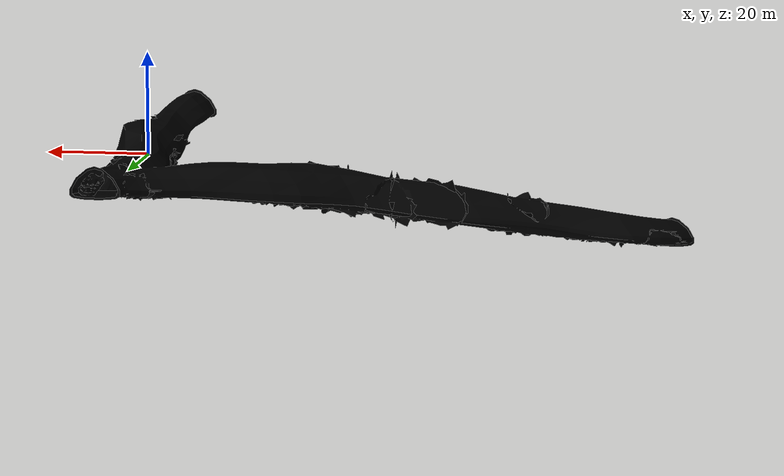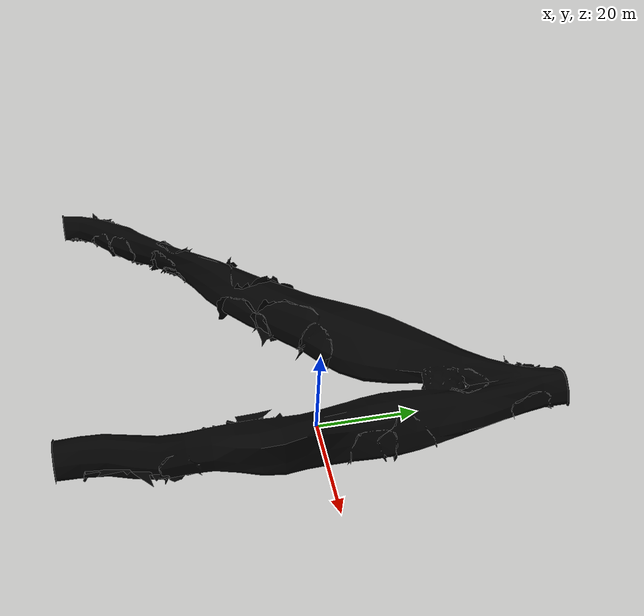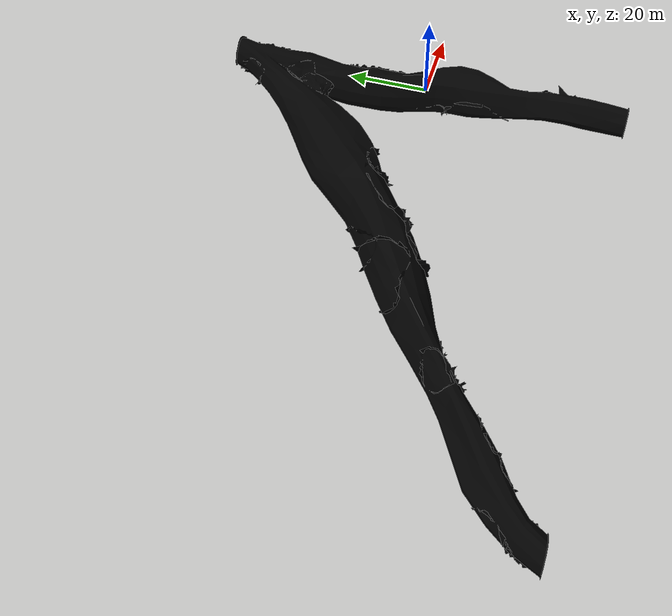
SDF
<sdf version="1.6">
  <model name="Cave 3 Way Elevation 02 Lights Type A">
    <include>
      <name>cave_3way_elevation_02_type_a</name>
      <uri>model://Cave 3 Way Elevation 02 Type A</uri>
    </include>
    <static>true</static>
    <link name="lights">
      <light name="Omni001" type="spot">
        <pose>0.875385 36.2999 0.995576 0 0 0</pose>
        <diffuse>0 0 0 1</diffuse>
        <specular>0 0 0 1</specular>
        <attenuation>
          <range>20</range>
          <linear>0.2</linear>
          <constant>1.0</constant>
          <quadratic>0.01</quadratic>
        </attenuation>
        <spot>
          <inner_angle>2.0</inner_angle>
          <outer_angle>3.1</outer_angle>
          <falloff>1.2</falloff>
        </spot>
        <cast_shadows>false</cast_shadows>
      </light>
      <light name="Omni003" type="spot">
        <pose>2.09401 -21.9842 1.79263 0 0 0</pose>
        <diffuse>0 0 0 1</diffuse>
        <specular>0 0 0 1</specular>
        <attenuation>
          <range>20</range>
          <linear>0.2</linear>
          <constant>1.0</constant>
          <quadratic>0.01</quadratic>
        </attenuation>
        <spot>
          <inner_angle>2.0</inner_angle>
          <outer_angle>3.1</outer_angle>
          <falloff>1.2</falloff>
        </spot>
        <cast_shadows>false</cast_shadows>
      </light>
      <light name="Omni005" type="spot">
        <pose>-64.091 -15.0648 -11.9682 0 0 0</pose>
        <diffuse>0 0 0 1</diffuse>
        <specular>0 0 0 1</specular>
        <attenuation>
          <range>20</range>
          <linear>0.2</linear>
          <constant>1.0</constant>
          <quadratic>0.01</quadratic>
        </attenuation>
        <spot>
          <inner_angle>2.0</inner_angle>
          <outer_angle>3.1</outer_angle>
          <falloff>1.2</falloff>
        </spot>
        <cast_shadows>false</cast_shadows>
      </light>
    </link>
  </model>
</sdf>

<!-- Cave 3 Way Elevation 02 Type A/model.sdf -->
<sdf version="1.6">
  <model name="Cave 3 Way Elevation 02 Type A">
    <static>true</static>
    <link name="base_link">
      <collision name="collision">
        <pose>0 0 0 0 0 0</pose>
        <geometry>
          <mesh>
            <uri>model://Cave 3 Way Elevation 02 Type A/meshes/3wayelevation02.dae</uri>
            <scale>1.0 1.0 1.0</scale>
          </mesh>
        </geometry>
      </collision>
      <visual name="CaveWall_visual">
        <geometry>
          <mesh>
            <uri>model://Cave 3 Way Elevation 02 Type A/meshes/3wayelevation02.dae</uri>
            <submesh>
              <name>CaveWall</name>
              <center>false</center>
            </submesh>
          </mesh>
        </geometry>
        <material>
          <diffuse>0 0 0 1</diffuse>
          <specular>0 0 0 1</specular>
          <pbr>
            <metal>
              <albedo_map>model://Cave 3 Way Elevation 02 Type A/materials/textures/CaveWall_Albedo.png</albedo_map>
              <normal_map>model://Cave 3 Way Elevation 02 Type A/materials/textures/CaveWall_Normal.png</normal_map>
              <roughness_map>model://Cave 3 Way Elevation 02 Type A/materials/textures/CaveWall_Roughness.png</roughness_map>
            </metal>
          </pbr>

          <script>
            <uri>model://Cave 3 Way Elevation 02 Type A/materials/scripts/</uri>
            <uri>model://Cave 3 Way Elevation 02 Type A/materials/textures/</uri>
            <name>CaveTile/CaveWall_Diffuse</name>
          </script>
        </material>
      </visual>
      <visual name="Gravel_visual">
        <geometry>
          <mesh>
            <uri>model://Cave 3 Way Elevation 02 Type A/meshes/3wayelevation02.dae</uri>
            <submesh>
              <name>Gravel</name>
              <center>false</center>
            </submesh>
          </mesh>
        </geometry>
        <material>
          <diffuse>0 0 0 1</diffuse>
          <specular>0 0 0 1</specular>
          <pbr>
            <metal>
              <albedo_map>model://Cave 3 Way Elevation 02 Type A/materials/textures/Gravel_Albedo.png</albedo_map>
              <normal_map>model://Cave 3 Way Elevation 02 Type A/materials/textures/Gravel_Normal.png</normal_map>
              <roughness_map>model://Cave 3 Way Elevation 02 Type A/materials/textures/Gravel_Roughness.png</roughness_map>
            </metal>
          </pbr>

          <script>
            <uri>model://Cave 3 Way Elevation 02 Type A/materials/scripts/</uri>
            <uri>model://Cave 3 Way Elevation 02 Type A/materials/textures/</uri>
            <name>CaveTile/Gravel_Diffuse</name>
          </script>
        </material>
      </visual>
      <visual name="StriatedRock_visual">
        <geometry>
          <mesh>
            <uri>model://Cave 3 Way Elevation 02 Type A/meshes/3wayelevation02.dae</uri>
            <submesh>
              <name>StriatedRock</name>
              <center>false</center>
            </submesh>
          </mesh>
        </geometry>
        <material>
          <diffuse>0 0 0 1</diffuse>
          <specular>0 0 0 1</specular>
          <pbr>
            <metal>
              <albedo_map>model://Cave 3 Way Elevation 02 Type A/materials/textures/StriatedRock_Albedo.png</albedo_map>
              <normal_map>model://Cave 3 Way Elevation 02 Type A/materials/textures/StriatedRock_Normal.png</normal_map>
              <roughness_map>model://Cave 3 Way Elevation 02 Type A/materials/textures/StriatedRock_Roughness.png</roughness_map>
            </metal>
          </pbr>

          <script>
            <uri>model://Cave 3 Way Elevation 02 Type A/materials/scripts/</uri>
            <uri>model://Cave 3 Way Elevation 02 Type A/materials/textures/</uri>
            <name>CaveTile/StriatedRock_Diffuse</name>
          </script>
        </material>
      </visual>
      <visual name="RockPile_visual">
        <geometry>
          <mesh>
            <uri>model://Cave 3 Way Elevation 02 Type A/meshes/3wayelevation02.dae</uri>
            <submesh>
              <name>RockPile</name>
              <center>false</center>
            </submesh>
          </mesh>
        </geometry>
        <material>
          <diffuse>0 0 0 1</diffuse>
          <specular>0 0 0 1</specular>
          <pbr>
            <metal>
              <albedo_map>model://Cave 3 Way Elevation 02 Type A/materials/textures/RockPile_Albedo.png</albedo_map>
              <normal_map>model://Cave 3 Way Elevation 02 Type A/materials/textures/RockPile_Normal.png</normal_map>
              <roughness_map>model://Cave 3 Way Elevation 02 Type A/materials/textures/RockPile_Roughness.png</roughness_map>
            </metal>
          </pbr>

          <script>
            <uri>model://Cave 3 Way Elevation 02 Type A/materials/scripts/</uri>
            <uri>model://Cave 3 Way Elevation 02 Type A/materials/textures/</uri>
            <name>CaveTile/RockPile_Diffuse</name>
          </script>
        </material>
      </visual>
    </link>

    <plugin filename="libignition-gazebo-performer-detector-system.so" name="ignition::gazebo::systems::PerformerDetector">
      <topic>/subt_performer_detector</topic>
      <pose>-3.2 42.5 1.7 0 0 0</pose>
      <header_data>
        <key>type</key>
        <value>decision</value>
      </header_data>
      <geometry>
        <box>
          <size>15 15 7</size>
        </box>
      </geometry>
    </plugin>
    <plugin filename="libignition-gazebo-performer-detector-system.so" name="ignition::gazebo::systems::PerformerDetector">
      <topic>/subt_performer_detector</topic>
      <pose>-50 0 -6.5 0 0 0</pose>
      <header_data>
        <key>type</key>
        <value>elevation</value>
      </header_data>
      <geometry>
        <box>
          <size>40 40 20</size>
        </box>
      </geometry>
    </plugin>
  </model>
</sdf>
